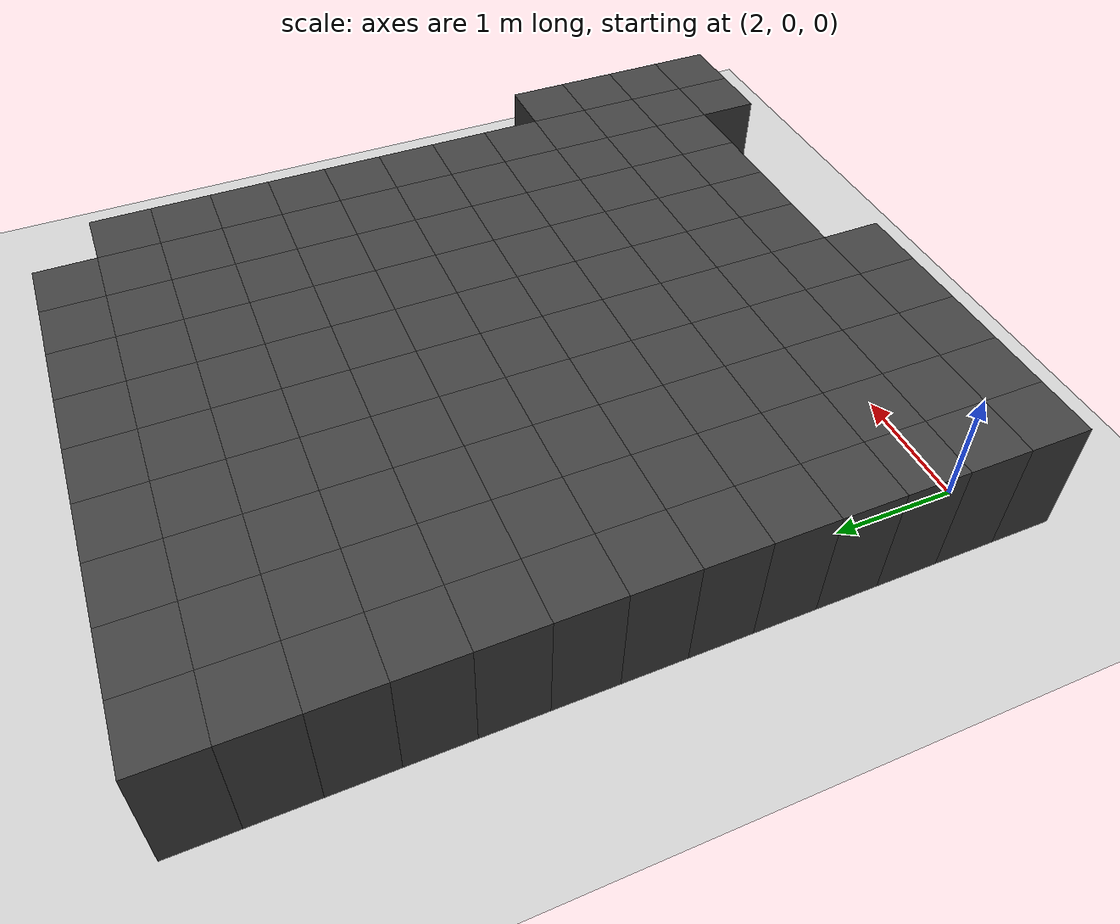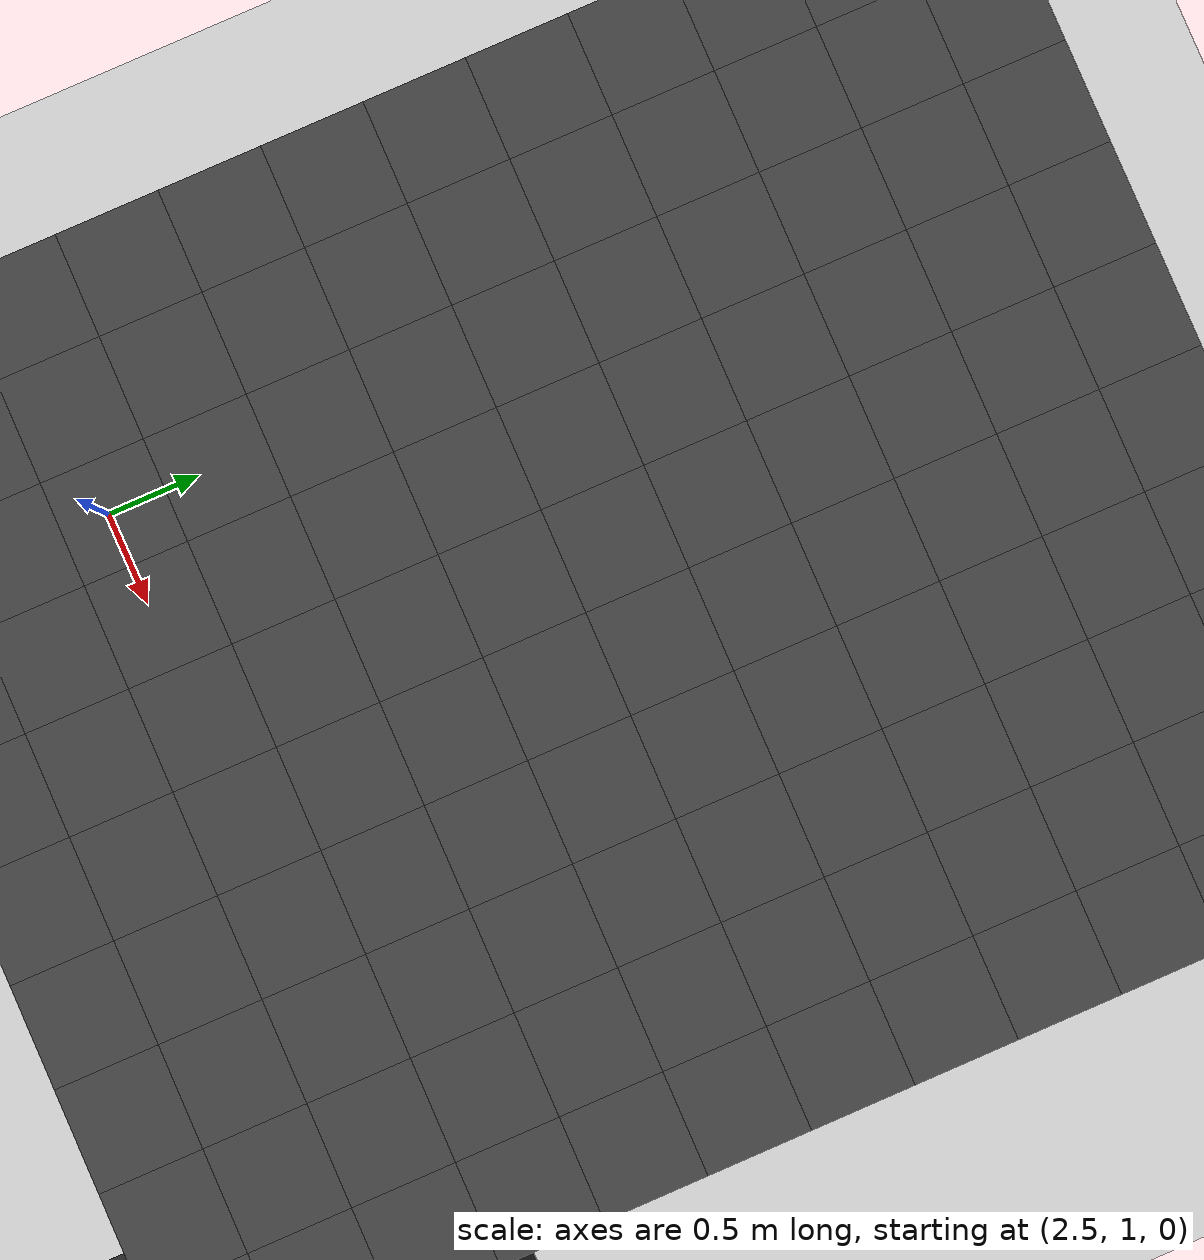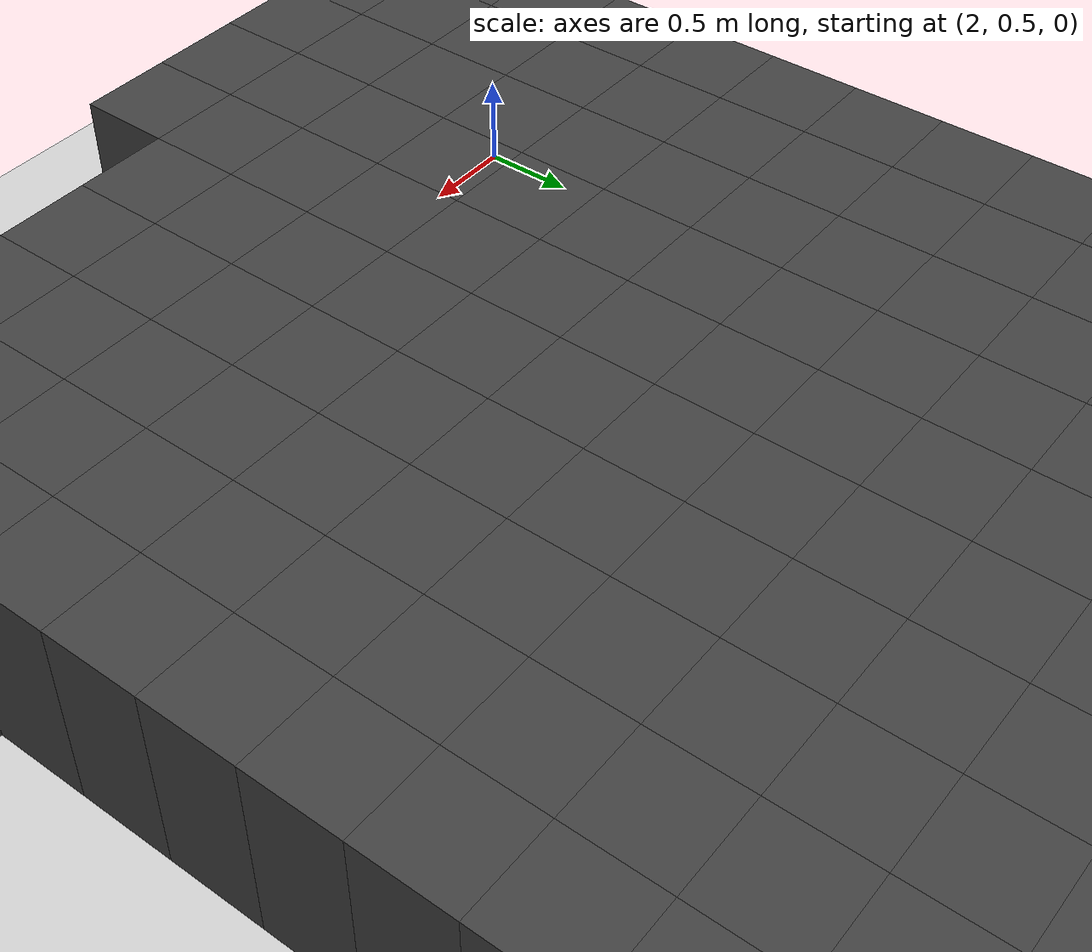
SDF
<sdf version="1.7">
 <world name="map_14494">
  <model name="ground_plane">
   <static>true</static>
   <link name="link">
    <collision name="collision">
     <geometry><plane><normal>0 0 1</normal><size>200 200</size></plane></geometry>
    </collision>
    <visual name="visual">
     <geometry><plane><normal>0 0 1</normal><size>200 200</size></plane></geometry>
     <material><ambient>0.8 0.8 0.8 1</ambient><diffuse>0.8 0.8 0.8 1</diffuse></material>
    </visual>
   </link>
  </model>
  <model name="maze_environment">
   <static>true</static>
   <link name="wall_486">
    <pose>1.750 5.750 0.500 0 0 0</pose>
    <collision name="col"><geometry><box><size>0.5 0.5 1.0</size></box></geometry></collision>
    <visual name="vis">
     <geometry><box><size>0.5 0.5 1.0</size></box></geometry>
     <material><ambient>0.15 0.15 0.15 1</ambient><diffuse>0.25 0.25 0.25 1</diffuse></material>
    </visual>
   </link>
   <link name="wall_487">
    <pose>2.250 5.750 0.500 0 0 0</pose>
    <collision name="col"><geometry><box><size>0.5 0.5 1.0</size></box></geometry></collision>
    <visual name="vis">
     <geometry><box><size>0.5 0.5 1.0</size></box></geometry>
     <material><ambient>0.15 0.15 0.15 1</ambient><diffuse>0.25 0.25 0.25 1</diffuse></material>
    </visual>
   </link>
   <link name="wall_488">
    <pose>2.750 5.750 0.500 0 0 0</pose>
    <collision name="col"><geometry><box><size>0.5 0.5 1.0</size></box></geometry></collision>
    <visual name="vis">
     <geometry><box><size>0.5 0.5 1.0</size></box></geometry>
     <material><ambient>0.15 0.15 0.15 1</ambient><diffuse>0.25 0.25 0.25 1</diffuse></material>
    </visual>
   </link>
   <link name="wall_489">
    <pose>3.250 5.750 0.500 0 0 0</pose>
    <collision name="col"><geometry><box><size>0.5 0.5 1.0</size></box></geometry></collision>
    <visual name="vis">
     <geometry><box><size>0.5 0.5 1.0</size></box></geometry>
     <material><ambient>0.15 0.15 0.15 1</ambient><diffuse>0.25 0.25 0.25 1</diffuse></material>
    </visual>
   </link>
   <link name="wall_490">
    <pose>3.750 5.750 0.500 0 0 0</pose>
    <collision name="col"><geometry><box><size>0.5 0.5 1.0</size></box></geometry></collision>
    <visual name="vis">
     <geometry><box><size>0.5 0.5 1.0</size></box></geometry>
     <material><ambient>0.15 0.15 0.15 1</ambient><diffuse>0.25 0.25 0.25 1</diffuse></material>
    </visual>
   </link>
   <link name="wall_491">
    <pose>4.250 5.750 0.500 0 0 0</pose>
    <collision name="col"><geometry><box><size>0.5 0.5 1.0</size></box></geometry></collision>
    <visual name="vis">
     <geometry><box><size>0.5 0.5 1.0</size></box></geometry>
     <material><ambient>0.15 0.15 0.15 1</ambient><diffuse>0.25 0.25 0.25 1</diffuse></material>
    </visual>
   </link>
   <link name="wall_492">
    <pose>4.750 5.750 0.500 0 0 0</pose>
    <collision name="col"><geometry><box><size>0.5 0.5 1.0</size></box></geometry></collision>
    <visual name="vis">
     <geometry><box><size>0.5 0.5 1.0</size></box></geometry>
     <material><ambient>0.15 0.15 0.15 1</ambient><diffuse>0.25 0.25 0.25 1</diffuse></material>
    </visual>
   </link>
   <link name="wall_493">
    <pose>5.250 5.750 0.500 0 0 0</pose>
    <collision name="col"><geometry><box><size>0.5 0.5 1.0</size></box></geometry></collision>
    <visual name="vis">
     <geometry><box><size>0.5 0.5 1.0</size></box></geometry>
     <material><ambient>0.15 0.15 0.15 1</ambient><diffuse>0.25 0.25 0.25 1</diffuse></material>
    </visual>
   </link>
   <link name="wall_494">
    <pose>5.750 5.750 0.500 0 0 0</pose>
    <collision name="col"><geometry><box><size>0.5 0.5 1.0</size></box></geometry></collision>
    <visual name="vis">
     <geometry><box><size>0.5 0.5 1.0</size></box></geometry>
     <material><ambient>0.15 0.15 0.15 1</ambient><diffuse>0.25 0.25 0.25 1</diffuse></material>
    </visual>
   </link>
   <link name="wall_519">
    <pose>1.750 5.250 0.500 0 0 0</pose>
    <collision name="col"><geometry><box><size>0.5 0.5 1.0</size></box></geometry></collision>
    <visual name="vis">
     <geometry><box><size>0.5 0.5 1.0</size></box></geometry>
     <material><ambient>0.15 0.15 0.15 1</ambient><diffuse>0.25 0.25 0.25 1</diffuse></material>
    </visual>
   </link>
   <link name="wall_520">
    <pose>2.250 5.250 0.500 0 0 0</pose>
    <collision name="col"><geometry><box><size>0.5 0.5 1.0</size></box></geometry></collision>
    <visual name="vis">
     <geometry><box><size>0.5 0.5 1.0</size></box></geometry>
     <material><ambient>0.15 0.15 0.15 1</ambient><diffuse>0.25 0.25 0.25 1</diffuse></material>
    </visual>
   </link>
   <link name="wall_521">
    <pose>2.750 5.250 0.500 0 0 0</pose>
    <collision name="col"><geometry><box><size>0.5 0.5 1.0</size></box></geometry></collision>
    <visual name="vis">
     <geometry><box><size>0.5 0.5 1.0</size></box></geometry>
     <material><ambient>0.15 0.15 0.15 1</ambient><diffuse>0.25 0.25 0.25 1</diffuse></material>
    </visual>
   </link>
   <link name="wall_522">
    <pose>3.250 5.250 0.500 0 0 0</pose>
    <collision name="col"><geometry><box><size>0.5 0.5 1.0</size></box></geometry></collision>
    <visual name="vis">
     <geometry><box><size>0.5 0.5 1.0</size></box></geometry>
     <material><ambient>0.15 0.15 0.15 1</ambient><diffuse>0.25 0.25 0.25 1</diffuse></material>
    </visual>
   </link>
   <link name="wall_523">
    <pose>3.750 5.250 0.500 0 0 0</pose>
    <collision name="col"><geometry><box><size>0.5 0.5 1.0</size></box></geometry></collision>
    <visual name="vis">
     <geometry><box><size>0.5 0.5 1.0</size></box></geometry>
     <material><ambient>0.15 0.15 0.15 1</ambient><diffuse>0.25 0.25 0.25 1</diffuse></material>
    </visual>
   </link>
   <link name="wall_524">
    <pose>4.250 5.250 0.500 0 0 0</pose>
    <collision name="col"><geometry><box><size>0.5 0.5 1.0</size></box></geometry></collision>
    <visual name="vis">
     <geometry><box><size>0.5 0.5 1.0</size></box></geometry>
     <material><ambient>0.15 0.15 0.15 1</ambient><diffuse>0.25 0.25 0.25 1</diffuse></material>
    </visual>
   </link>
   <link name="wall_525">
    <pose>4.750 5.250 0.500 0 0 0</pose>
    <collision name="col"><geometry><box><size>0.5 0.5 1.0</size></box></geometry></collision>
    <visual name="vis">
     <geometry><box><size>0.5 0.5 1.0</size></box></geometry>
     <material><ambient>0.15 0.15 0.15 1</ambient><diffuse>0.25 0.25 0.25 1</diffuse></material>
    </visual>
   </link>
   <link name="wall_526">
    <pose>5.250 5.250 0.500 0 0 0</pose>
    <collision name="col"><geometry><box><size>0.5 0.5 1.0</size></box></geometry></collision>
    <visual name="vis">
     <geometry><box><size>0.5 0.5 1.0</size></box></geometry>
     <material><ambient>0.15 0.15 0.15 1</ambient><diffuse>0.25 0.25 0.25 1</diffuse></material>
    </visual>
   </link>
   <link name="wall_527">
    <pose>5.750 5.250 0.500 0 0 0</pose>
    <collision name="col"><geometry><box><size>0.5 0.5 1.0</size></box></geometry></collision>
    <visual name="vis">
     <geometry><box><size>0.5 0.5 1.0</size></box></geometry>
     <material><ambient>0.15 0.15 0.15 1</ambient><diffuse>0.25 0.25 0.25 1</diffuse></material>
    </visual>
   </link>
   <link name="wall_528">
    <pose>6.250 5.250 0.500 0 0 0</pose>
    <collision name="col"><geometry><box><size>0.5 0.5 1.0</size></box></geometry></collision>
    <visual name="vis">
     <geometry><box><size>0.5 0.5 1.0</size></box></geometry>
     <material><ambient>0.15 0.15 0.15 1</ambient><diffuse>0.25 0.25 0.25 1</diffuse></material>
    </visual>
   </link>
   <link name="wall_552">
    <pose>1.750 4.750 0.500 0 0 0</pose>
    <collision name="col"><geometry><box><size>0.5 0.5 1.0</size></box></geometry></collision>
    <visual name="vis">
     <geometry><box><size>0.5 0.5 1.0</size></box></geometry>
     <material><ambient>0.15 0.15 0.15 1</ambient><diffuse>0.25 0.25 0.25 1</diffuse></material>
    </visual>
   </link>
   <link name="wall_553">
    <pose>2.250 4.750 0.500 0 0 0</pose>
    <collision name="col"><geometry><box><size>0.5 0.5 1.0</size></box></geometry></collision>
    <visual name="vis">
     <geometry><box><size>0.5 0.5 1.0</size></box></geometry>
     <material><ambient>0.15 0.15 0.15 1</ambient><diffuse>0.25 0.25 0.25 1</diffuse></material>
    </visual>
   </link>
   <link name="wall_554">
    <pose>2.750 4.750 0.500 0 0 0</pose>
    <collision name="col"><geometry><box><size>0.5 0.5 1.0</size></box></geometry></collision>
    <visual name="vis">
     <geometry><box><size>0.5 0.5 1.0</size></box></geometry>
     <material><ambient>0.15 0.15 0.15 1</ambient><diffuse>0.25 0.25 0.25 1</diffuse></material>
    </visual>
   </link>
   <link name="wall_555">
    <pose>3.250 4.750 0.500 0 0 0</pose>
    <collision name="col"><geometry><box><size>0.5 0.5 1.0</size></box></geometry></collision>
    <visual name="vis">
     <geometry><box><size>0.5 0.5 1.0</size></box></geometry>
     <material><ambient>0.15 0.15 0.15 1</ambient><diffuse>0.25 0.25 0.25 1</diffuse></material>
    </visual>
   </link>
   <link name="wall_556">
    <pose>3.750 4.750 0.500 0 0 0</pose>
    <collision name="col"><geometry><box><size>0.5 0.5 1.0</size></box></geometry></collision>
    <visual name="vis">
     <geometry><box><size>0.5 0.5 1.0</size></box></geometry>
     <material><ambient>0.15 0.15 0.15 1</ambient><diffuse>0.25 0.25 0.25 1</diffuse></material>
    </visual>
   </link>
   <link name="wall_557">
    <pose>4.250 4.750 0.500 0 0 0</pose>
    <collision name="col"><geometry><box><size>0.5 0.5 1.0</size></box></geometry></collision>
    <visual name="vis">
     <geometry><box><size>0.5 0.5 1.0</size></box></geometry>
     <material><ambient>0.15 0.15 0.15 1</ambient><diffuse>0.25 0.25 0.25 1</diffuse></material>
    </visual>
   </link>
   <link name="wall_558">
    <pose>4.750 4.750 0.500 0 0 0</pose>
    <collision name="col"><geometry><box><size>0.5 0.5 1.0</size></box></geometry></collision>
    <visual name="vis">
     <geometry><box><size>0.5 0.5 1.0</size></box></geometry>
     <material><ambient>0.15 0.15 0.15 1</ambient><diffuse>0.25 0.25 0.25 1</diffuse></material>
    </visual>
   </link>
   <link name="wall_559">
    <pose>5.250 4.750 0.500 0 0 0</pose>
    <collision name="col"><geometry><box><size>0.5 0.5 1.0</size></box></geometry></collision>
    <visual name="vis">
     <geometry><box><size>0.5 0.5 1.0</size></box></geometry>
     <material><ambient>0.15 0.15 0.15 1</ambient><diffuse>0.25 0.25 0.25 1</diffuse></material>
    </visual>
   </link>
   <link name="wall_560">
    <pose>5.750 4.750 0.500 0 0 0</pose>
    <collision name="col"><geometry><box><size>0.5 0.5 1.0</size></box></geometry></collision>
    <visual name="vis">
     <geometry><box><size>0.5 0.5 1.0</size></box></geometry>
     <material><ambient>0.15 0.15 0.15 1</ambient><diffuse>0.25 0.25 0.25 1</diffuse></material>
    </visual>
   </link>
   <link name="wall_561">
    <pose>6.250 4.750 0.500 0 0 0</pose>
    <collision name="col"><geometry><box><size>0.5 0.5 1.0</size></box></geometry></collision>
    <visual name="vis">
     <geometry><box><size>0.5 0.5 1.0</size></box></geometry>
     <material><ambient>0.15 0.15 0.15 1</ambient><diffuse>0.25 0.25 0.25 1</diffuse></material>
    </visual>
   </link>
   <link name="wall_585">
    <pose>1.750 4.250 0.500 0 0 0</pose>
    <collision name="col"><geometry><box><size>0.5 0.5 1.0</size></box></geometry></collision>
    <visual name="vis">
     <geometry><box><size>0.5 0.5 1.0</size></box></geometry>
     <material><ambient>0.15 0.15 0.15 1</ambient><diffuse>0.25 0.25 0.25 1</diffuse></material>
    </visual>
   </link>
   <link name="wall_586">
    <pose>2.250 4.250 0.500 0 0 0</pose>
    <collision name="col"><geometry><box><size>0.5 0.5 1.0</size></box></geometry></collision>
    <visual name="vis">
     <geometry><box><size>0.5 0.5 1.0</size></box></geometry>
     <material><ambient>0.15 0.15 0.15 1</ambient><diffuse>0.25 0.25 0.25 1</diffuse></material>
    </visual>
   </link>
   <link name="wall_587">
    <pose>2.750 4.250 0.500 0 0 0</pose>
    <collision name="col"><geometry><box><size>0.5 0.5 1.0</size></box></geometry></collision>
    <visual name="vis">
     <geometry><box><size>0.5 0.5 1.0</size></box></geometry>
     <material><ambient>0.15 0.15 0.15 1</ambient><diffuse>0.25 0.25 0.25 1</diffuse></material>
    </visual>
   </link>
   <link name="wall_588">
    <pose>3.250 4.250 0.500 0 0 0</pose>
    <collision name="col"><geometry><box><size>0.5 0.5 1.0</size></box></geometry></collision>
    <visual name="vis">
     <geometry><box><size>0.5 0.5 1.0</size></box></geometry>
     <material><ambient>0.15 0.15 0.15 1</ambient><diffuse>0.25 0.25 0.25 1</diffuse></material>
    </visual>
   </link>
   <link name="wall_589">
    <pose>3.750 4.250 0.500 0 0 0</pose>
    <collision name="col"><geometry><box><size>0.5 0.5 1.0</size></box></geometry></collision>
    <visual name="vis">
     <geometry><box><size>0.5 0.5 1.0</size></box></geometry>
     <material><ambient>0.15 0.15 0.15 1</ambient><diffuse>0.25 0.25 0.25 1</diffuse></material>
    </visual>
   </link>
   <link name="wall_590">
    <pose>4.250 4.250 0.500 0 0 0</pose>
    <collision name="col"><geometry><box><size>0.5 0.5 1.0</size></box></geometry></collision>
    <visual name="vis">
     <geometry><box><size>0.5 0.5 1.0</size></box></geometry>
     <material><ambient>0.15 0.15 0.15 1</ambient><diffuse>0.25 0.25 0.25 1</diffuse></material>
    </visual>
   </link>
   <link name="wall_591">
    <pose>4.750 4.250 0.500 0 0 0</pose>
    <collision name="col"><geometry><box><size>0.5 0.5 1.0</size></box></geometry></collision>
    <visual name="vis">
     <geometry><box><size>0.5 0.5 1.0</size></box></geometry>
     <material><ambient>0.15 0.15 0.15 1</ambient><diffuse>0.25 0.25 0.25 1</diffuse></material>
    </visual>
   </link>
   <link name="wall_592">
    <pose>5.250 4.250 0.500 0 0 0</pose>
    <collision name="col"><geometry><box><size>0.5 0.5 1.0</size></box></geometry></collision>
    <visual name="vis">
     <geometry><box><size>0.5 0.5 1.0</size></box></geometry>
     <material><ambient>0.15 0.15 0.15 1</ambient><diffuse>0.25 0.25 0.25 1</diffuse></material>
    </visual>
   </link>
   <link name="wall_593">
    <pose>5.750 4.250 0.500 0 0 0</pose>
    <collision name="col"><geometry><box><size>0.5 0.5 1.0</size></box></geometry></collision>
    <visual name="vis">
     <geometry><box><size>0.5 0.5 1.0</size></box></geometry>
     <material><ambient>0.15 0.15 0.15 1</ambient><diffuse>0.25 0.25 0.25 1</diffuse></material>
    </visual>
   </link>
   <link name="wall_594">
    <pose>6.250 4.250 0.500 0 0 0</pose>
    <collision name="col"><geometry><box><size>0.5 0.5 1.0</size></box></geometry></collision>
    <visual name="vis">
     <geometry><box><size>0.5 0.5 1.0</size></box></geometry>
     <material><ambient>0.15 0.15 0.15 1</ambient><diffuse>0.25 0.25 0.25 1</diffuse></material>
    </visual>
   </link>
   <link name="wall_618">
    <pose>1.750 3.750 0.500 0 0 0</pose>
    <collision name="col"><geometry><box><size>0.5 0.5 1.0</size></box></geometry></collision>
    <visual name="vis">
     <geometry><box><size>0.5 0.5 1.0</size></box></geometry>
     <material><ambient>0.15 0.15 0.15 1</ambient><diffuse>0.25 0.25 0.25 1</diffuse></material>
    </visual>
   </link>
   <link name="wall_619">
    <pose>2.250 3.750 0.500 0 0 0</pose>
    <collision name="col"><geometry><box><size>0.5 0.5 1.0</size></box></geometry></collision>
    <visual name="vis">
     <geometry><box><size>0.5 0.5 1.0</size></box></geometry>
     <material><ambient>0.15 0.15 0.15 1</ambient><diffuse>0.25 0.25 0.25 1</diffuse></material>
    </visual>
   </link>
   <link name="wall_620">
    <pose>2.750 3.750 0.500 0 0 0</pose>
    <collision name="col"><geometry><box><size>0.5 0.5 1.0</size></box></geometry></collision>
    <visual name="vis">
     <geometry><box><size>0.5 0.5 1.0</size></box></geometry>
     <material><ambient>0.15 0.15 0.15 1</ambient><diffuse>0.25 0.25 0.25 1</diffuse></material>
    </visual>
   </link>
   <link name="wall_621">
    <pose>3.250 3.750 0.500 0 0 0</pose>
    <collision name="col"><geometry><box><size>0.5 0.5 1.0</size></box></geometry></collision>
    <visual name="vis">
     <geometry><box><size>0.5 0.5 1.0</size></box></geometry>
     <material><ambient>0.15 0.15 0.15 1</ambient><diffuse>0.25 0.25 0.25 1</diffuse></material>
    </visual>
   </link>
   <link name="wall_622">
    <pose>3.750 3.750 0.500 0 0 0</pose>
    <collision name="col"><geometry><box><size>0.5 0.5 1.0</size></box></geometry></collision>
    <visual name="vis">
     <geometry><box><size>0.5 0.5 1.0</size></box></geometry>
     <material><ambient>0.15 0.15 0.15 1</ambient><diffuse>0.25 0.25 0.25 1</diffuse></material>
    </visual>
   </link>
   <link name="wall_623">
    <pose>4.250 3.750 0.500 0 0 0</pose>
    <collision name="col"><geometry><box><size>0.5 0.5 1.0</size></box></geometry></collision>
    <visual name="vis">
     <geometry><box><size>0.5 0.5 1.0</size></box></geometry>
     <material><ambient>0.15 0.15 0.15 1</ambient><diffuse>0.25 0.25 0.25 1</diffuse></material>
    </visual>
   </link>
   <link name="wall_624">
    <pose>4.750 3.750 0.500 0 0 0</pose>
    <collision name="col"><geometry><box><size>0.5 0.5 1.0</size></box></geometry></collision>
    <visual name="vis">
     <geometry><box><size>0.5 0.5 1.0</size></box></geometry>
     <material><ambient>0.15 0.15 0.15 1</ambient><diffuse>0.25 0.25 0.25 1</diffuse></material>
    </visual>
   </link>
   <link name="wall_625">
    <pose>5.250 3.750 0.500 0 0 0</pose>
    <collision name="col"><geometry><box><size>0.5 0.5 1.0</size></box></geometry></collision>
    <visual name="vis">
     <geometry><box><size>0.5 0.5 1.0</size></box></geometry>
     <material><ambient>0.15 0.15 0.15 1</ambient><diffuse>0.25 0.25 0.25 1</diffuse></material>
    </visual>
   </link>
   <link name="wall_626">
    <pose>5.750 3.750 0.500 0 0 0</pose>
    <collision name="col"><geometry><box><size>0.5 0.5 1.0</size></box></geometry></collision>
    <visual name="vis">
     <geometry><box><size>0.5 0.5 1.0</size></box></geometry>
     <material><ambient>0.15 0.15 0.15 1</ambient><diffuse>0.25 0.25 0.25 1</diffuse></material>
    </visual>
   </link>
   <link name="wall_627">
    <pose>6.250 3.750 0.500 0 0 0</pose>
    <collision name="col"><geometry><box><size>0.5 0.5 1.0</size></box></geometry></collision>
    <visual name="vis">
     <geometry><box><size>0.5 0.5 1.0</size></box></geometry>
     <material><ambient>0.15 0.15 0.15 1</ambient><diffuse>0.25 0.25 0.25 1</diffuse></material>
    </visual>
   </link>
   <link name="wall_652">
    <pose>1.750 3.250 0.500 0 0 0</pose>
    <collision name="col"><geometry><box><size>0.5 0.5 1.0</size></box></geometry></collision>
    <visual name="vis">
     <geometry><box><size>0.5 0.5 1.0</size></box></geometry>
     <material><ambient>0.15 0.15 0.15 1</ambient><diffuse>0.25 0.25 0.25 1</diffuse></material>
    </visual>
   </link>
   <link name="wall_653">
    <pose>2.250 3.250 0.500 0 0 0</pose>
    <collision name="col"><geometry><box><size>0.5 0.5 1.0</size></box></geometry></collision>
    <visual name="vis">
     <geometry><box><size>0.5 0.5 1.0</size></box></geometry>
     <material><ambient>0.15 0.15 0.15 1</ambient><diffuse>0.25 0.25 0.25 1</diffuse></material>
    </visual>
   </link>
   <link name="wall_654">
    <pose>2.750 3.250 0.500 0 0 0</pose>
    <collision name="col"><geometry><box><size>0.5 0.5 1.0</size></box></geometry></collision>
    <visual name="vis">
     <geometry><box><size>0.5 0.5 1.0</size></box></geometry>
     <material><ambient>0.15 0.15 0.15 1</ambient><diffuse>0.25 0.25 0.25 1</diffuse></material>
    </visual>
   </link>
   <link name="wall_655">
    <pose>3.250 3.250 0.500 0 0 0</pose>
    <collision name="col"><geometry><box><size>0.5 0.5 1.0</size></box></geometry></collision>
    <visual name="vis">
     <geometry><box><size>0.5 0.5 1.0</size></box></geometry>
     <material><ambient>0.15 0.15 0.15 1</ambient><diffuse>0.25 0.25 0.25 1</diffuse></material>
    </visual>
   </link>
   <link name="wall_656">
    <pose>3.750 3.250 0.500 0 0 0</pose>
    <collision name="col"><geometry><box><size>0.5 0.5 1.0</size></box></geometry></collision>
    <visual name="vis">
     <geometry><box><size>0.5 0.5 1.0</size></box></geometry>
     <material><ambient>0.15 0.15 0.15 1</ambient><diffuse>0.25 0.25 0.25 1</diffuse></material>
    </visual>
   </link>
   <link name="wall_657">
    <pose>4.250 3.250 0.500 0 0 0</pose>
    <collision name="col"><geometry><box><size>0.5 0.5 1.0</size></box></geometry></collision>
    <visual name="vis">
     <geometry><box><size>0.5 0.5 1.0</size></box></geometry>
     <material><ambient>0.15 0.15 0.15 1</ambient><diffuse>0.25 0.25 0.25 1</diffuse></material>
    </visual>
   </link>
   <link name="wall_658">
    <pose>4.750 3.250 0.500 0 0 0</pose>
    <collision name="col"><geometry><box><size>0.5 0.5 1.0</size></box></geometry></collision>
    <visual name="vis">
     <geometry><box><size>0.5 0.5 1.0</size></box></geometry>
     <material><ambient>0.15 0.15 0.15 1</ambient><diffuse>0.25 0.25 0.25 1</diffuse></material>
    </visual>
   </link>
   <link name="wall_659">
    <pose>5.250 3.250 0.500 0 0 0</pose>
    <collision name="col"><geometry><box><size>0.5 0.5 1.0</size></box></geometry></collision>
    <visual name="vis">
     <geometry><box><size>0.5 0.5 1.0</size></box></geometry>
     <material><ambient>0.15 0.15 0.15 1</ambient><diffuse>0.25 0.25 0.25 1</diffuse></material>
    </visual>
   </link>
   <link name="wall_660">
    <pose>5.750 3.250 0.500 0 0 0</pose>
    <collision name="col"><geometry><box><size>0.5 0.5 1.0</size></box></geometry></collision>
    <visual name="vis">
     <geometry><box><size>0.5 0.5 1.0</size></box></geometry>
     <material><ambient>0.15 0.15 0.15 1</ambient><diffuse>0.25 0.25 0.25 1</diffuse></material>
    </visual>
   </link>
   <link name="wall_661">
    <pose>6.250 3.250 0.500 0 0 0</pose>
    <collision name="col"><geometry><box><size>0.5 0.5 1.0</size></box></geometry></collision>
    <visual name="vis">
     <geometry><box><size>0.5 0.5 1.0</size></box></geometry>
     <material><ambient>0.15 0.15 0.15 1</ambient><diffuse>0.25 0.25 0.25 1</diffuse></material>
    </visual>
   </link>
   <link name="wall_687">
    <pose>1.750 2.750 0.500 0 0 0</pose>
    <collision name="col"><geometry><box><size>0.5 0.5 1.0</size></box></geometry></collision>
    <visual name="vis">
     <geometry><box><size>0.5 0.5 1.0</size></box></geometry>
     <material><ambient>0.15 0.15 0.15 1</ambient><diffuse>0.25 0.25 0.25 1</diffuse></material>
    </visual>
   </link>
   <link name="wall_688">
    <pose>2.250 2.750 0.500 0 0 0</pose>
    <collision name="col"><geometry><box><size>0.5 0.5 1.0</size></box></geometry></collision>
    <visual name="vis">
     <geometry><box><size>0.5 0.5 1.0</size></box></geometry>
     <material><ambient>0.15 0.15 0.15 1</ambient><diffuse>0.25 0.25 0.25 1</diffuse></material>
    </visual>
   </link>
   <link name="wall_689">
    <pose>2.750 2.750 0.500 0 0 0</pose>
    <collision name="col"><geometry><box><size>0.5 0.5 1.0</size></box></geometry></collision>
    <visual name="vis">
     <geometry><box><size>0.5 0.5 1.0</size></box></geometry>
     <material><ambient>0.15 0.15 0.15 1</ambient><diffuse>0.25 0.25 0.25 1</diffuse></material>
    </visual>
   </link>
   <link name="wall_690">
    <pose>3.250 2.750 0.500 0 0 0</pose>
    <collision name="col"><geometry><box><size>0.5 0.5 1.0</size></box></geometry></collision>
    <visual name="vis">
     <geometry><box><size>0.5 0.5 1.0</size></box></geometry>
     <material><ambient>0.15 0.15 0.15 1</ambient><diffuse>0.25 0.25 0.25 1</diffuse></material>
    </visual>
   </link>
   <link name="wall_691">
    <pose>3.750 2.750 0.500 0 0 0</pose>
    <collision name="col"><geometry><box><size>0.5 0.5 1.0</size></box></geometry></collision>
    <visual name="vis">
     <geometry><box><size>0.5 0.5 1.0</size></box></geometry>
     <material><ambient>0.15 0.15 0.15 1</ambient><diffuse>0.25 0.25 0.25 1</diffuse></material>
    </visual>
   </link>
   <link name="wall_692">
    <pose>4.250 2.750 0.500 0 0 0</pose>
    <collision name="col"><geometry><box><size>0.5 0.5 1.0</size></box></geometry></collision>
    <visual name="vis">
     <geometry><box><size>0.5 0.5 1.0</size></box></geometry>
     <material><ambient>0.15 0.15 0.15 1</ambient><diffuse>0.25 0.25 0.25 1</diffuse></material>
    </visual>
   </link>
   <link name="wall_693">
    <pose>4.750 2.750 0.500 0 0 0</pose>
    <collision name="col"><geometry><box><size>0.5 0.5 1.0</size></box></geometry></collision>
    <visual name="vis">
     <geometry><box><size>0.5 0.5 1.0</size></box></geometry>
     <material><ambient>0.15 0.15 0.15 1</ambient><diffuse>0.25 0.25 0.25 1</diffuse></material>
    </visual>
   </link>
   <link name="wall_694">
    <pose>5.250 2.750 0.500 0 0 0</pose>
    <collision name="col"><geometry><box><size>0.5 0.5 1.0</size></box></geometry></collision>
    <visual name="vis">
     <geometry><box><size>0.5 0.5 1.0</size></box></geometry>
     <material><ambient>0.15 0.15 0.15 1</ambient><diffuse>0.25 0.25 0.25 1</diffuse></material>
    </visual>
   </link>
   <link name="wall_695">
    <pose>5.750 2.750 0.500 0 0 0</pose>
    <collision name="col"><geometry><box><size>0.5 0.5 1.0</size></box></geometry></collision>
    <visual name="vis">
     <geometry><box><size>0.5 0.5 1.0</size></box></geometry>
     <material><ambient>0.15 0.15 0.15 1</ambient><diffuse>0.25 0.25 0.25 1</diffuse></material>
    </visual>
   </link>
   <link name="wall_696">
    <pose>6.250 2.750 0.500 0 0 0</pose>
    <collision name="col"><geometry><box><size>0.5 0.5 1.0</size></box></geometry></collision>
    <visual name="vis">
     <geometry><box><size>0.5 0.5 1.0</size></box></geometry>
     <material><ambient>0.15 0.15 0.15 1</ambient><diffuse>0.25 0.25 0.25 1</diffuse></material>
    </visual>
   </link>
   <link name="wall_722">
    <pose>1.750 2.250 0.500 0 0 0</pose>
    <collision name="col"><geometry><box><size>0.5 0.5 1.0</size></box></geometry></collision>
    <visual name="vis">
     <geometry><box><size>0.5 0.5 1.0</size></box></geometry>
     <material><ambient>0.15 0.15 0.15 1</ambient><diffuse>0.25 0.25 0.25 1</diffuse></material>
    </visual>
   </link>
   <link name="wall_723">
    <pose>2.250 2.250 0.500 0 0 0</pose>
    <collision name="col"><geometry><box><size>0.5 0.5 1.0</size></box></geometry></collision>
    <visual name="vis">
     <geometry><box><size>0.5 0.5 1.0</size></box></geometry>
     <material><ambient>0.15 0.15 0.15 1</ambient><diffuse>0.25 0.25 0.25 1</diffuse></material>
    </visual>
   </link>
   <link name="wall_724">
    <pose>2.750 2.250 0.500 0 0 0</pose>
    <collision name="col"><geometry><box><size>0.5 0.5 1.0</size></box></geometry></collision>
    <visual name="vis">
     <geometry><box><size>0.5 0.5 1.0</size></box></geometry>
     <material><ambient>0.15 0.15 0.15 1</ambient><diffuse>0.25 0.25 0.25 1</diffuse></material>
    </visual>
   </link>
   <link name="wall_725">
    <pose>3.250 2.250 0.500 0 0 0</pose>
    <collision name="col"><geometry><box><size>0.5 0.5 1.0</size></box></geometry></collision>
    <visual name="vis">
     <geometry><box><size>0.5 0.5 1.0</size></box></geometry>
     <material><ambient>0.15 0.15 0.15 1</ambient><diffuse>0.25 0.25 0.25 1</diffuse></material>
    </visual>
   </link>
   <link name="wall_726">
    <pose>3.750 2.250 0.500 0 0 0</pose>
    <collision name="col"><geometry><box><size>0.5 0.5 1.0</size></box></geometry></collision>
    <visual name="vis">
     <geometry><box><size>0.5 0.5 1.0</size></box></geometry>
     <material><ambient>0.15 0.15 0.15 1</ambient><diffuse>0.25 0.25 0.25 1</diffuse></material>
    </visual>
   </link>
   <link name="wall_727">
    <pose>4.250 2.250 0.500 0 0 0</pose>
    <collision name="col"><geometry><box><size>0.5 0.5 1.0</size></box></geometry></collision>
    <visual name="vis">
     <geometry><box><size>0.5 0.5 1.0</size></box></geometry>
     <material><ambient>0.15 0.15 0.15 1</ambient><diffuse>0.25 0.25 0.25 1</diffuse></material>
    </visual>
   </link>
   <link name="wall_728">
    <pose>4.750 2.250 0.500 0 0 0</pose>
    <collision name="col"><geometry><box><size>0.5 0.5 1.0</size></box></geometry></collision>
    <visual name="vis">
     <geometry><box><size>0.5 0.5 1.0</size></box></geometry>
     <material><ambient>0.15 0.15 0.15 1</ambient><diffuse>0.25 0.25 0.25 1</diffuse></material>
    </visual>
   </link>
   <link name="wall_729">
    <pose>5.250 2.250 0.500 0 0 0</pose>
    <collision name="col"><geometry><box><size>0.5 0.5 1.0</size></box></geometry></collision>
    <visual name="vis">
     <geometry><box><size>0.5 0.5 1.0</size></box></geometry>
     <material><ambient>0.15 0.15 0.15 1</ambient><diffuse>0.25 0.25 0.25 1</diffuse></material>
    </visual>
   </link>
   <link name="wall_730">
    <pose>5.750 2.250 0.500 0 0 0</pose>
    <collision name="col"><geometry><box><size>0.5 0.5 1.0</size></box></geometry></collision>
    <visual name="vis">
     <geometry><box><size>0.5 0.5 1.0</size></box></geometry>
     <material><ambient>0.15 0.15 0.15 1</ambient><diffuse>0.25 0.25 0.25 1</diffuse></material>
    </visual>
   </link>
   <link name="wall_731">
    <pose>6.250 2.250 0.500 0 0 0</pose>
    <collision name="col"><geometry><box><size>0.5 0.5 1.0</size></box></geometry></collision>
    <visual name="vis">
     <geometry><box><size>0.5 0.5 1.0</size></box></geometry>
     <material><ambient>0.15 0.15 0.15 1</ambient><diffuse>0.25 0.25 0.25 1</diffuse></material>
    </visual>
   </link>
   <link name="wall_765">
    <pose>1.750 1.750 0.500 0 0 0</pose>
    <collision name="col"><geometry><box><size>0.5 0.5 1.0</size></box></geometry></collision>
    <visual name="vis">
     <geometry><box><size>0.5 0.5 1.0</size></box></geometry>
     <material><ambient>0.15 0.15 0.15 1</ambient><diffuse>0.25 0.25 0.25 1</diffuse></material>
    </visual>
   </link>
   <link name="wall_766">
    <pose>2.250 1.750 0.500 0 0 0</pose>
    <collision name="col"><geometry><box><size>0.5 0.5 1.0</size></box></geometry></collision>
    <visual name="vis">
     <geometry><box><size>0.5 0.5 1.0</size></box></geometry>
     <material><ambient>0.15 0.15 0.15 1</ambient><diffuse>0.25 0.25 0.25 1</diffuse></material>
    </visual>
   </link>
   <link name="wall_767">
    <pose>2.750 1.750 0.500 0 0 0</pose>
    <collision name="col"><geometry><box><size>0.5 0.5 1.0</size></box></geometry></collision>
    <visual name="vis">
     <geometry><box><size>0.5 0.5 1.0</size></box></geometry>
     <material><ambient>0.15 0.15 0.15 1</ambient><diffuse>0.25 0.25 0.25 1</diffuse></material>
    </visual>
   </link>
   <link name="wall_768">
    <pose>3.250 1.750 0.500 0 0 0</pose>
    <collision name="col"><geometry><box><size>0.5 0.5 1.0</size></box></geometry></collision>
    <visual name="vis">
     <geometry><box><size>0.5 0.5 1.0</size></box></geometry>
     <material><ambient>0.15 0.15 0.15 1</ambient><diffuse>0.25 0.25 0.25 1</diffuse></material>
    </visual>
   </link>
   <link name="wall_769">
    <pose>3.750 1.750 0.500 0 0 0</pose>
    <collision name="col"><geometry><box><size>0.5 0.5 1.0</size></box></geometry></collision>
    <visual name="vis">
     <geometry><box><size>0.5 0.5 1.0</size></box></geometry>
     <material><ambient>0.15 0.15 0.15 1</ambient><diffuse>0.25 0.25 0.25 1</diffuse></material>
    </visual>
   </link>
   <link name="wall_770">
    <pose>4.250 1.750 0.500 0 0 0</pose>
    <collision name="col"><geometry><box><size>0.5 0.5 1.0</size></box></geometry></collision>
    <visual name="vis">
     <geometry><box><size>0.5 0.5 1.0</size></box></geometry>
     <material><ambient>0.15 0.15 0.15 1</ambient><diffuse>0.25 0.25 0.25 1</diffuse></material>
    </visual>
   </link>
   <link name="wall_771">
    <pose>4.750 1.750 0.500 0 0 0</pose>
    <collision name="col"><geometry><box><size>0.5 0.5 1.0</size></box></geometry></collision>
    <visual name="vis">
     <geometry><box><size>0.5 0.5 1.0</size></box></geometry>
     <material><ambient>0.15 0.15 0.15 1</ambient><diffuse>0.25 0.25 0.25 1</diffuse></material>
    </visual>
   </link>
   <link name="wall_772">
    <pose>5.250 1.750 0.500 0 0 0</pose>
    <collision name="col"><geometry><box><size>0.5 0.5 1.0</size></box></geometry></collision>
    <visual name="vis">
     <geometry><box><size>0.5 0.5 1.0</size></box></geometry>
     <material><ambient>0.15 0.15 0.15 1</ambient><diffuse>0.25 0.25 0.25 1</diffuse></material>
    </visual>
   </link>
   <link name="wall_773">
    <pose>5.750 1.750 0.500 0 0 0</pose>
    <collision name="col"><geometry><box><size>0.5 0.5 1.0</size></box></geometry></collision>
    <visual name="vis">
     <geometry><box><size>0.5 0.5 1.0</size></box></geometry>
     <material><ambient>0.15 0.15 0.15 1</ambient><diffuse>0.25 0.25 0.25 1</diffuse></material>
    </visual>
   </link>
   <link name="wall_774">
    <pose>6.250 1.750 0.500 0 0 0</pose>
    <collision name="col"><geometry><box><size>0.5 0.5 1.0</size></box></geometry></collision>
    <visual name="vis">
     <geometry><box><size>0.5 0.5 1.0</size></box></geometry>
     <material><ambient>0.15 0.15 0.15 1</ambient><diffuse>0.25 0.25 0.25 1</diffuse></material>
    </visual>
   </link>
   <link name="wall_808">
    <pose>1.750 1.250 0.500 0 0 0</pose>
    <collision name="col"><geometry><box><size>0.5 0.5 1.0</size></box></geometry></collision>
    <visual name="vis">
     <geometry><box><size>0.5 0.5 1.0</size></box></geometry>
     <material><ambient>0.15 0.15 0.15 1</ambient><diffuse>0.25 0.25 0.25 1</diffuse></material>
    </visual>
   </link>
   <link name="wall_809">
    <pose>2.250 1.250 0.500 0 0 0</pose>
    <collision name="col"><geometry><box><size>0.5 0.5 1.0</size></box></geometry></collision>
    <visual name="vis">
     <geometry><box><size>0.5 0.5 1.0</size></box></geometry>
     <material><ambient>0.15 0.15 0.15 1</ambient><diffuse>0.25 0.25 0.25 1</diffuse></material>
    </visual>
   </link>
   <link name="wall_810">
    <pose>2.750 1.250 0.500 0 0 0</pose>
    <collision name="col"><geometry><box><size>0.5 0.5 1.0</size></box></geometry></collision>
    <visual name="vis">
     <geometry><box><size>0.5 0.5 1.0</size></box></geometry>
     <material><ambient>0.15 0.15 0.15 1</ambient><diffuse>0.25 0.25 0.25 1</diffuse></material>
    </visual>
   </link>
   <link name="wall_811">
    <pose>3.250 1.250 0.500 0 0 0</pose>
    <collision name="col"><geometry><box><size>0.5 0.5 1.0</size></box></geometry></collision>
    <visual name="vis">
     <geometry><box><size>0.5 0.5 1.0</size></box></geometry>
     <material><ambient>0.15 0.15 0.15 1</ambient><diffuse>0.25 0.25 0.25 1</diffuse></material>
    </visual>
   </link>
   <link name="wall_812">
    <pose>3.750 1.250 0.500 0 0 0</pose>
    <collision name="col"><geometry><box><size>0.5 0.5 1.0</size></box></geometry></collision>
    <visual name="vis">
     <geometry><box><size>0.5 0.5 1.0</size></box></geometry>
     <material><ambient>0.15 0.15 0.15 1</ambient><diffuse>0.25 0.25 0.25 1</diffuse></material>
    </visual>
   </link>
   <link name="wall_813">
    <pose>4.250 1.250 0.500 0 0 0</pose>
    <collision name="col"><geometry><box><size>0.5 0.5 1.0</size></box></geometry></collision>
    <visual name="vis">
     <geometry><box><size>0.5 0.5 1.0</size></box></geometry>
     <material><ambient>0.15 0.15 0.15 1</ambient><diffuse>0.25 0.25 0.25 1</diffuse></material>
    </visual>
   </link>
   <link name="wall_814">
    <pose>4.750 1.250 0.500 0 0 0</pose>
    <collision name="col"><geometry><box><size>0.5 0.5 1.0</size></box></geometry></collision>
    <visual name="vis">
     <geometry><box><size>0.5 0.5 1.0</size></box></geometry>
     <material><ambient>0.15 0.15 0.15 1</ambient><diffuse>0.25 0.25 0.25 1</diffuse></material>
    </visual>
   </link>
   <link name="wall_815">
    <pose>5.250 1.250 0.500 0 0 0</pose>
    <collision name="col"><geometry><box><size>0.5 0.5 1.0</size></box></geometry></collision>
    <visual name="vis">
     <geometry><box><size>0.5 0.5 1.0</size></box></geometry>
     <material><ambient>0.15 0.15 0.15 1</ambient><diffuse>0.25 0.25 0.25 1</diffuse></material>
    </visual>
   </link>
   <link name="wall_816">
    <pose>5.750 1.250 0.500 0 0 0</pose>
    <collision name="col"><geometry><box><size>0.5 0.5 1.0</size></box></geometry></collision>
    <visual name="vis">
     <geometry><box><size>0.5 0.5 1.0</size></box></geometry>
     <material><ambient>0.15 0.15 0.15 1</ambient><diffuse>0.25 0.25 0.25 1</diffuse></material>
    </visual>
   </link>
   <link name="wall_817">
    <pose>6.250 1.250 0.500 0 0 0</pose>
    <collision name="col"><geometry><box><size>0.5 0.5 1.0</size></box></geometry></collision>
    <visual name="vis">
     <geometry><box><size>0.5 0.5 1.0</size></box></geometry>
     <material><ambient>0.15 0.15 0.15 1</ambient><diffuse>0.25 0.25 0.25 1</diffuse></material>
    </visual>
   </link>
   <link name="wall_818">
    <pose>6.750 1.250 0.500 0 0 0</pose>
    <collision name="col"><geometry><box><size>0.5 0.5 1.0</size></box></geometry></collision>
    <visual name="vis">
     <geometry><box><size>0.5 0.5 1.0</size></box></geometry>
     <material><ambient>0.15 0.15 0.15 1</ambient><diffuse>0.25 0.25 0.25 1</diffuse></material>
    </visual>
   </link>
   <link name="wall_851">
    <pose>1.750 0.750 0.500 0 0 0</pose>
    <collision name="col"><geometry><box><size>0.5 0.5 1.0</size></box></geometry></collision>
    <visual name="vis">
     <geometry><box><size>0.5 0.5 1.0</size></box></geometry>
     <material><ambient>0.15 0.15 0.15 1</ambient><diffuse>0.25 0.25 0.25 1</diffuse></material>
    </visual>
   </link>
   <link name="wall_852">
    <pose>2.250 0.750 0.500 0 0 0</pose>
    <collision name="col"><geometry><box><size>0.5 0.5 1.0</size></box></geometry></collision>
    <visual name="vis">
     <geometry><box><size>0.5 0.5 1.0</size></box></geometry>
     <material><ambient>0.15 0.15 0.15 1</ambient><diffuse>0.25 0.25 0.25 1</diffuse></material>
    </visual>
   </link>
   <link name="wall_853">
    <pose>2.750 0.750 0.500 0 0 0</pose>
    <collision name="col"><geometry><box><size>0.5 0.5 1.0</size></box></geometry></collision>
    <visual name="vis">
     <geometry><box><size>0.5 0.5 1.0</size></box></geometry>
     <material><ambient>0.15 0.15 0.15 1</ambient><diffuse>0.25 0.25 0.25 1</diffuse></material>
    </visual>
   </link>
   <link name="wall_854">
    <pose>3.250 0.750 0.500 0 0 0</pose>
    <collision name="col"><geometry><box><size>0.5 0.5 1.0</size></box></geometry></collision>
    <visual name="vis">
     <geometry><box><size>0.5 0.5 1.0</size></box></geometry>
     <material><ambient>0.15 0.15 0.15 1</ambient><diffuse>0.25 0.25 0.25 1</diffuse></material>
    </visual>
   </link>
   <link name="wall_855">
    <pose>3.750 0.750 0.500 0 0 0</pose>
    <collision name="col"><geometry><box><size>0.5 0.5 1.0</size></box></geometry></collision>
    <visual name="vis">
     <geometry><box><size>0.5 0.5 1.0</size></box></geometry>
     <material><ambient>0.15 0.15 0.15 1</ambient><diffuse>0.25 0.25 0.25 1</diffuse></material>
    </visual>
   </link>
   <link name="wall_856">
    <pose>4.250 0.750 0.500 0 0 0</pose>
    <collision name="col"><geometry><box><size>0.5 0.5 1.0</size></box></geometry></collision>
    <visual name="vis">
     <geometry><box><size>0.5 0.5 1.0</size></box></geometry>
     <material><ambient>0.15 0.15 0.15 1</ambient><diffuse>0.25 0.25 0.25 1</diffuse></material>
    </visual>
   </link>
   <link name="wall_857">
    <pose>4.750 0.750 0.500 0 0 0</pose>
    <collision name="col"><geometry><box><size>0.5 0.5 1.0</size></box></geometry></collision>
    <visual name="vis">
     <geometry><box><size>0.5 0.5 1.0</size></box></geometry>
     <material><ambient>0.15 0.15 0.15 1</ambient><diffuse>0.25 0.25 0.25 1</diffuse></material>
    </visual>
   </link>
   <link name="wall_858">
    <pose>5.250 0.750 0.500 0 0 0</pose>
    <collision name="col"><geometry><box><size>0.5 0.5 1.0</size></box></geometry></collision>
    <visual name="vis">
     <geometry><box><size>0.5 0.5 1.0</size></box></geometry>
     <material><ambient>0.15 0.15 0.15 1</ambient><diffuse>0.25 0.25 0.25 1</diffuse></material>
    </visual>
   </link>
   <link name="wall_859">
    <pose>5.750 0.750 0.500 0 0 0</pose>
    <collision name="col"><geometry><box><size>0.5 0.5 1.0</size></box></geometry></collision>
    <visual name="vis">
     <geometry><box><size>0.5 0.5 1.0</size></box></geometry>
     <material><ambient>0.15 0.15 0.15 1</ambient><diffuse>0.25 0.25 0.25 1</diffuse></material>
    </visual>
   </link>
   <link name="wall_860">
    <pose>6.250 0.750 0.500 0 0 0</pose>
    <collision name="col"><geometry><box><size>0.5 0.5 1.0</size></box></geometry></collision>
    <visual name="vis">
     <geometry><box><size>0.5 0.5 1.0</size></box></geometry>
     <material><ambient>0.15 0.15 0.15 1</ambient><diffuse>0.25 0.25 0.25 1</diffuse></material>
    </visual>
   </link>
   <link name="wall_861">
    <pose>6.750 0.750 0.500 0 0 0</pose>
    <collision name="col"><geometry><box><size>0.5 0.5 1.0</size></box></geometry></collision>
    <visual name="vis">
     <geometry><box><size>0.5 0.5 1.0</size></box></geometry>
     <material><ambient>0.15 0.15 0.15 1</ambient><diffuse>0.25 0.25 0.25 1</diffuse></material>
    </visual>
   </link>
   <link name="wall_890">
    <pose>1.750 0.250 0.500 0 0 0</pose>
    <collision name="col"><geometry><box><size>0.5 0.5 1.0</size></box></geometry></collision>
    <visual name="vis">
     <geometry><box><size>0.5 0.5 1.0</size></box></geometry>
     <material><ambient>0.15 0.15 0.15 1</ambient><diffuse>0.25 0.25 0.25 1</diffuse></material>
    </visual>
   </link>
   <link name="wall_891">
    <pose>2.250 0.250 0.500 0 0 0</pose>
    <collision name="col"><geometry><box><size>0.5 0.5 1.0</size></box></geometry></collision>
    <visual name="vis">
     <geometry><box><size>0.5 0.5 1.0</size></box></geometry>
     <material><ambient>0.15 0.15 0.15 1</ambient><diffuse>0.25 0.25 0.25 1</diffuse></material>
    </visual>
   </link>
   <link name="wall_892">
    <pose>2.750 0.250 0.500 0 0 0</pose>
    <collision name="col"><geometry><box><size>0.5 0.5 1.0</size></box></geometry></collision>
    <visual name="vis">
     <geometry><box><size>0.5 0.5 1.0</size></box></geometry>
     <material><ambient>0.15 0.15 0.15 1</ambient><diffuse>0.25 0.25 0.25 1</diffuse></material>
    </visual>
   </link>
   <link name="wall_893">
    <pose>3.250 0.250 0.500 0 0 0</pose>
    <collision name="col"><geometry><box><size>0.5 0.5 1.0</size></box></geometry></collision>
    <visual name="vis">
     <geometry><box><size>0.5 0.5 1.0</size></box></geometry>
     <material><ambient>0.15 0.15 0.15 1</ambient><diffuse>0.25 0.25 0.25 1</diffuse></material>
    </visual>
   </link>
   <link name="wall_894">
    <pose>3.750 0.250 0.500 0 0 0</pose>
    <collision name="col"><geometry><box><size>0.5 0.5 1.0</size></box></geometry></collision>
    <visual name="vis">
     <geometry><box><size>0.5 0.5 1.0</size></box></geometry>
     <material><ambient>0.15 0.15 0.15 1</ambient><diffuse>0.25 0.25 0.25 1</diffuse></material>
    </visual>
   </link>
   <link name="wall_895">
    <pose>4.250 0.250 0.500 0 0 0</pose>
    <collision name="col"><geometry><box><size>0.5 0.5 1.0</size></box></geometry></collision>
    <visual name="vis">
     <geometry><box><size>0.5 0.5 1.0</size></box></geometry>
     <material><ambient>0.15 0.15 0.15 1</ambient><diffuse>0.25 0.25 0.25 1</diffuse></material>
    </visual>
   </link>
   <link name="wall_896">
    <pose>4.750 0.250 0.500 0 0 0</pose>
    <collision name="col"><geometry><box><size>0.5 0.5 1.0</size></box></geometry></collision>
    <visual name="vis">
     <geometry><box><size>0.5 0.5 1.0</size></box></geometry>
     <material><ambient>0.15 0.15 0.15 1</ambient><diffuse>0.25 0.25 0.25 1</diffuse></material>
    </visual>
   </link>
   <link name="wall_897">
    <pose>5.250 0.250 0.500 0 0 0</pose>
    <collision name="col"><geometry><box><size>0.5 0.5 1.0</size></box></geometry></collision>
    <visual name="vis">
     <geometry><box><size>0.5 0.5 1.0</size></box></geometry>
     <material><ambient>0.15 0.15 0.15 1</ambient><diffuse>0.25 0.25 0.25 1</diffuse></material>
    </visual>
   </link>
   <link name="wall_898">
    <pose>5.750 0.250 0.500 0 0 0</pose>
    <collision name="col"><geometry><box><size>0.5 0.5 1.0</size></box></geometry></collision>
    <visual name="vis">
     <geometry><box><size>0.5 0.5 1.0</size></box></geometry>
     <material><ambient>0.15 0.15 0.15 1</ambient><diffuse>0.25 0.25 0.25 1</diffuse></material>
    </visual>
   </link>
   <link name="wall_899">
    <pose>6.250 0.250 0.500 0 0 0</pose>
    <collision name="col"><geometry><box><size>0.5 0.5 1.0</size></box></geometry></collision>
    <visual name="vis">
     <geometry><box><size>0.5 0.5 1.0</size></box></geometry>
     <material><ambient>0.15 0.15 0.15 1</ambient><diffuse>0.25 0.25 0.25 1</diffuse></material>
    </visual>
   </link>
   <link name="wall_900">
    <pose>6.750 0.250 0.500 0 0 0</pose>
    <collision name="col"><geometry><box><size>0.5 0.5 1.0</size></box></geometry></collision>
    <visual name="vis">
     <geometry><box><size>0.5 0.5 1.0</size></box></geometry>
     <material><ambient>0.15 0.15 0.15 1</ambient><diffuse>0.25 0.25 0.25 1</diffuse></material>
    </visual>
   </link>
   <link name="wall_935">
    <pose>1.750 -0.250 0.500 0 0 0</pose>
    <collision name="col"><geometry><box><size>0.5 0.5 1.0</size></box></geometry></collision>
    <visual name="vis">
     <geometry><box><size>0.5 0.5 1.0</size></box></geometry>
     <material><ambient>0.15 0.15 0.15 1</ambient><diffuse>0.25 0.25 0.25 1</diffuse></material>
    </visual>
   </link>
   <link name="wall_936">
    <pose>2.250 -0.250 0.500 0 0 0</pose>
    <collision name="col"><geometry><box><size>0.5 0.5 1.0</size></box></geometry></collision>
    <visual name="vis">
     <geometry><box><size>0.5 0.5 1.0</size></box></geometry>
     <material><ambient>0.15 0.15 0.15 1</ambient><diffuse>0.25 0.25 0.25 1</diffuse></material>
    </visual>
   </link>
   <link name="wall_937">
    <pose>2.750 -0.250 0.500 0 0 0</pose>
    <collision name="col"><geometry><box><size>0.5 0.5 1.0</size></box></geometry></collision>
    <visual name="vis">
     <geometry><box><size>0.5 0.5 1.0</size></box></geometry>
     <material><ambient>0.15 0.15 0.15 1</ambient><diffuse>0.25 0.25 0.25 1</diffuse></material>
    </visual>
   </link>
   <link name="wall_938">
    <pose>3.250 -0.250 0.500 0 0 0</pose>
    <collision name="col"><geometry><box><size>0.5 0.5 1.0</size></box></geometry></collision>
    <visual name="vis">
     <geometry><box><size>0.5 0.5 1.0</size></box></geometry>
     <material><ambient>0.15 0.15 0.15 1</ambient><diffuse>0.25 0.25 0.25 1</diffuse></material>
    </visual>
   </link>
   <link name="wall_939">
    <pose>3.750 -0.250 0.500 0 0 0</pose>
    <collision name="col"><geometry><box><size>0.5 0.5 1.0</size></box></geometry></collision>
    <visual name="vis">
     <geometry><box><size>0.5 0.5 1.0</size></box></geometry>
     <material><ambient>0.15 0.15 0.15 1</ambient><diffuse>0.25 0.25 0.25 1</diffuse></material>
    </visual>
   </link>
   <link name="wall_940">
    <pose>6.250 -0.250 0.500 0 0 0</pose>
    <collision name="col"><geometry><box><size>0.5 0.5 1.0</size></box></geometry></collision>
    <visual name="vis">
     <geometry><box><size>0.5 0.5 1.0</size></box></geometry>
     <material><ambient>0.15 0.15 0.15 1</ambient><diffuse>0.25 0.25 0.25 1</diffuse></material>
    </visual>
   </link>
   <link name="wall_941">
    <pose>6.750 -0.250 0.500 0 0 0</pose>
    <collision name="col"><geometry><box><size>0.5 0.5 1.0</size></box></geometry></collision>
    <visual name="vis">
     <geometry><box><size>0.5 0.5 1.0</size></box></geometry>
     <material><ambient>0.15 0.15 0.15 1</ambient><diffuse>0.25 0.25 0.25 1</diffuse></material>
    </visual>
   </link>
  </model>
 </world>
</sdf>
